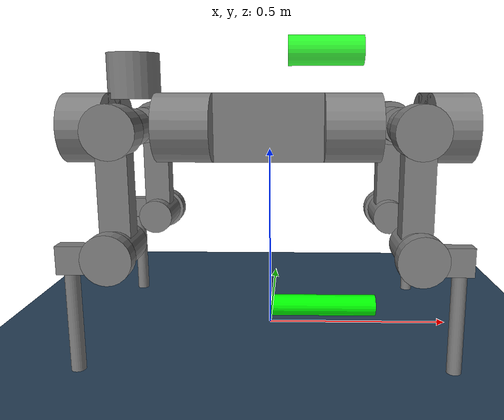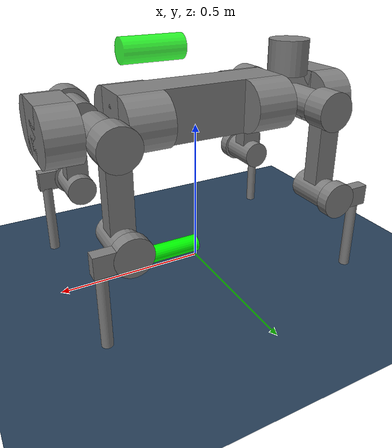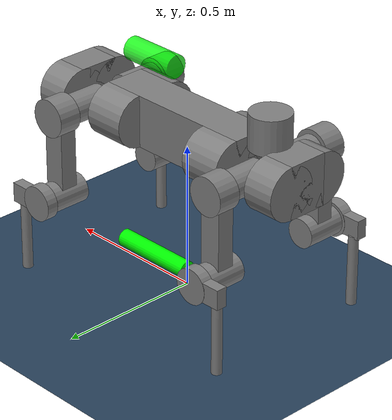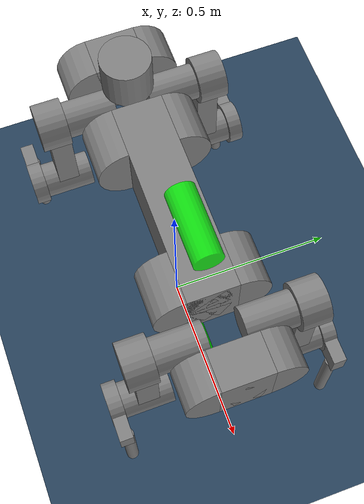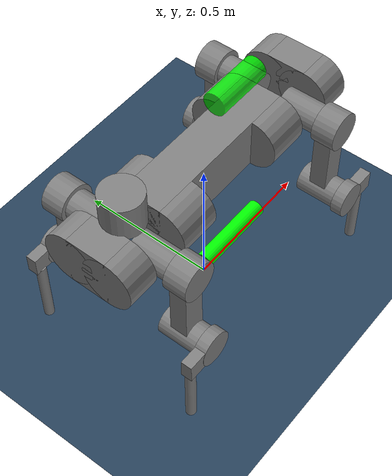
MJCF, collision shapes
<mujoco model="anymal_c scene">
  <include file="anymal_c.xml"/>

  <visual>
    <headlight diffuse="0.6 0.6 0.6" ambient="0.3 0.3 0.3" specular="0 0 0"/>
    <rgba haze="0.15 0.25 0.35 1"/>
    <global azimuth="120" elevation="-20"/>
  </visual>

  <statistic center="0 0 .3" extent="1.2"/>

  <asset>
    <texture type="skybox" builtin="gradient" rgb1="0.3 0.5 0.7" rgb2="0 0 0" width="512" height="3072"/>
    <texture type="2d" name="groundplane" builtin="checker" mark="edge" rgb1="0.2 0.3 0.4" rgb2="0.1 0.2 0.3"
      markrgb="0.8 0.8 0.8" width="300" height="300"/>
    <material name="groundplane" texture="groundplane" texuniform="true" texrepeat="5 5" reflectance="0.2"/>
  </asset>

  <worldbody>
    <light pos="0 0 1.5" dir="0 0 -1" directional="true"/>
    <geom name="ground" size="0 0 0.05" type="plane" material="groundplane"/>
  </worldbody>
</mujoco>

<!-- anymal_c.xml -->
<mujoco model="anymal_c">
  <compiler angle="radian" meshdir="assets" texturedir="assets" autolimits="true"/>

  <option cone="elliptic" impratio="100"/>

  <default>
    <material specular="0" shininess="0.25"/>
    <default class="anymal_c">
      <joint damping="1" frictionloss="0.1"/>

      <default class="visual">
        <geom type="mesh" contype="0" conaffinity="0" group="2"/>
        <default class="visual_zflip">
          <geom quat="0 0 0 1"/>
        </default>
      </default>
      <default class="collision">
        <geom group="3" type="cylinder"/>
        <default class="foot">
          <geom type="sphere" size="0.03" pos="0 0 0.02325" priority="1" solimp="0.015 1 0.03" condim="6"
            friction="0.8 0.02 0.01"/>
        </default>
      </default>

      <default class="affine">
        <position kp="200" kv="1" ctrlrange="-6.28 6.28" forcerange="-140 140"/>
      </default>
    </default>
  </default>

  <asset>
    <material name="black_plastic" rgba="0.007 0.007 0.007 1"/>
    <material name="green" rgba="0.052 0.178 0.033 1"/>
    <material name="red" rgba="0.178 0.006 0.005 1"/>
    <material name="yellow" rgba="0.178 0.119 0.006 1"/>
    <material name="lwl" rgba="0.8 0.8 0.8 1"/>
    <material name="base" texture="base"/>
    <material name="top_shell" texture="top_shell"/>
    <material name="bottom_shell" texture="bottom_shell"/>
    <material name="hip_l" texture="hip_l"/>
    <material name="thigh" texture="thigh"/>
    <material name="shank_l" texture="shank_l"/>
    <material name="foot" texture="foot"/>
    <material name="hip_r" texture="hip_r"/>
    <material name="shank" texture="shank_r"/>
    <material name="hatch" texture="hatch"/>
    <material name="remote" texture="remote"/>
    <material name="handle" texture="handle"/>
    <material name="face" texture="face"/>
    <material name="depth_camera" texture="depth_camera"/>
    <material name="wide_angle_camera" texture="wide_angle_camera"/>
    <material name="battery" texture="battery"/>
    <material name="lidar_cage" texture="lidar_cage"/>
    <material name="lidar" texture="lidar"/>
    <material name="drive" texture="drive"/>

    <texture type="2d" name="base" file="base.png"/>
    <texture type="2d" name="top_shell" file="top_shell.png"/>
    <texture type="2d" name="bottom_shell" file="bottom_shell.png"/>
    <texture type="2d" name="remote" file="remote.png"/>
    <texture type="2d" name="hatch" file="hatch.png"/>
    <texture type="2d" name="handle" file="handle.png"/>
    <texture type="2d" name="face" file="face.png"/>
    <texture type="2d" name="battery" file="battery.png"/>
    <texture type="2d" name="lidar_cage" file="lidar_cage.png"/>
    <texture type="2d" name="depth_camera" file="depth_camera.png"/>
    <texture type="2d" name="wide_angle_camera" file="wide_angle_camera.png"/>
    <texture type="2d" name="lidar" file="lidar.png"/>
    <texture type="2d" name="drive" file="drive.png"/>
    <texture type="2d" name="hip_l" file="hip_l.png"/>
    <texture type="2d" name="shank_l" file="shank_l.png"/>
    <texture type="2d" name="foot" file="foot.png"/>
    <texture type="2d" name="thigh" file="thigh.png"/>
    <texture type="2d" name="shank_r" file="shank_r.png"/>
    <texture type="2d" name="hip_r" file="hip_r.png"/>

    <mesh file="base_0.obj"/>
    <mesh file="base_1.obj"/>
    <mesh file="base_2.obj"/>
    <mesh file="base_3.obj"/>
    <mesh file="base_4.obj"/>
    <mesh file="base_5.obj"/>
    <mesh file="top_shell.obj"/>
    <mesh file="bottom_shell.obj"/>
    <mesh file="remote.obj"/>
    <mesh file="handle.obj"/>
    <mesh file="face.obj"/>
    <mesh file="wide_angle_camera.obj"/>
    <mesh file="depth_camera.obj"/>
    <mesh file="battery.obj"/>
    <mesh file="lidar_cage.obj"/>
    <mesh file="lidar.obj"/>
    <mesh file="drive.obj"/>
    <mesh file="hip_l.obj"/>
    <mesh file="thigh.obj"/>
    <mesh file="shank_l.obj"/>
    <mesh file="foot.obj"/>
    <mesh file="hip_r.obj"/>
    <mesh file="hatch.obj"/>
    <mesh file="shank_r.obj"/>

    <!-- 目标箭头mesh -->
    <mesh name="arrow_cone" file="cone.stl" scale="0.003 0.003 0.003"/>

    <!-- 目标箭头材质 -->
    <material name="target_green" rgba="0 1 0 0.9"/>
  </asset>

  <worldbody>
    <light name="spotlight" mode="targetbodycom" target="base" pos="0 -1 2" cutoff="30"/>

    <!-- 目标位置标记：三维箭头 (圆柱+圆锥) -->
    <body name="target_marker" pos="0 0 0.05">
      <joint name="target_x" type="slide" axis="1 0 0" limited="false"/>
      <joint name="target_y" type="slide" axis="0 1 0" limited="false"/>
      <joint name="target_yaw" type="hinge" axis="0 0 1" limited="false"/>

      <!-- 箭头杆：圆柱体，长度0.3m，半径0.03m -->
      <geom name="arrow_shaft" type="cylinder" size="0.03 0.15"
            pos="0.15 0 0" quat="0.707107 0 0.707107 0"
            material="target_green" contype="0" conaffinity="0"/>

      <!-- 箭头头：圆锥，底部贴合圆柱末端圆面，尖端向前 -->
      <!-- 圆柱末端在 x=0.3，圆锥底部也在 x=0.3 附近 -->
      <!-- 圆锥原始朝向：尖端向+Z，需要绕Y轴旋转-90°让尖端指向+X -->
      <geom name="arrow_head" type="mesh" mesh="arrow_cone"
            pos="0.28 -0.3 0.09" quat="0.707107 0 0.707107 0"
            material="target_green" contype="0" conaffinity="0"/>
    </body>
    <body name="base" pos="0 0 0.56" quat="1 0 0 0" childclass="anymal_c">
      <freejoint/>
      <inertial mass="19.2035" pos="0.0025 0 0.0502071" quat="0.5 0.5 0.5 0.5" diaginertia="0.639559 0.624031 0.217374"/>

      <!-- IMU传感器位置 -->
      <site name="imu_site" pos="0 0 0" size="0.01"/>

      <geom mesh="base_0" material="green" class="visual"/>
      <geom mesh="base_1" material="yellow" class="visual"/>
      <geom mesh="base_2" material="red" class="visual"/>
      <geom mesh="base_3" material="black_plastic" class="visual"/>
      <geom mesh="base_4" material="lwl" class="visual"/>
      <geom mesh="base_5" material="base" class="visual"/>
      <geom name="base" class="collision" size="0.29 0.07 0.09" type="box"/>
      <geom class="collision" size="0.09 0.0725" pos="0.2175 0.07 0" quat="1 0 1 0"/>
      <geom class="collision" size="0.09 0.0725" pos="-0.2175 0.07 0" quat="1 0 1 0"/>
      <geom class="collision" size="0.09 0.0725" pos="0.2175 -0.07 0" quat="1 0 1 0"/>
      <geom class="collision" size="0.09 0.0725" pos="-0.2175 -0.07 0" quat="1 0 1 0"/>
      <geom material="top_shell" mesh="top_shell" class="visual"/>
      <geom material="bottom_shell" mesh="bottom_shell" class="visual"/>
      <geom material="remote" mesh="remote" class="visual"/>
      <geom material="handle" mesh="handle" class="visual"/>
      <geom pos="0.4145 0 0" material="face" mesh="face" class="visual"/>
      <geom class="collision" size="0.055 0.07 0.09" pos="0.4695 0 0" type="box"/>
      <geom class="collision" size="0.09 0.055" pos="0.4695 0.07 0" quat="1 0 1 0"/>
      <geom class="collision" size="0.09 0.055" pos="0.4695 -0.07 0" quat="1 0 1 0"/>
      <geom pos="0.46165 0 -0.0292" quat="0.965926 0 0.258819 0" material="depth_camera" mesh="depth_camera"
        class="visual"/>
      <geom pos="0.513 0 0.01497" material="wide_angle_camera" mesh="wide_angle_camera" class="visual"/>
      <geom pos="-0.4145 0 0" material="face" mesh="face" class="visual_zflip"/>
      <geom class="collision" size="0.055 0.07 0.09" pos="-0.4695 0 0" quat="0 0 0 1" type="box"/>
      <geom class="collision" size="0.09 0.055" pos="-0.4695 -0.07 0" quat="0 -1 0 1"/>
      <geom class="collision" size="0.09 0.055" pos="-0.4695 0.07 0" quat="0 -1 0 1"/>
      <geom pos="-0.46165 0 -0.0292" quat="0 -0.258819 0 0.965926" material="depth_camera" mesh="depth_camera"
        class="visual"/>
      <geom pos="-0.513 0 0.01497" material="wide_angle_camera" mesh="wide_angle_camera" class="visual_zflip"/>
      <geom material="battery" mesh="battery" class="visual"/>
      <geom pos="0 0.07646 0.02905" quat="0.683013 -0.183013 0.183013 0.683013" material="depth_camera"
        mesh="depth_camera" class="visual"/>
      <geom pos="0 -0.07646 0.02905" quat="0.683013 0.183013 0.183013 -0.683013" material="depth_camera"
        mesh="depth_camera" class="visual"/>
      <geom pos="-0.364 0 0.0735" material="lidar_cage" mesh="lidar_cage" class="visual"/>
      <geom class="collision" size="0.07 0.06" pos="-0.364 0 0.1335"/>
      <geom pos="-0.364 0 0.1422" quat="1 0 0 -1" material="lidar" mesh="lidar" class="visual"/>
      <geom pos="0.2999 0.104 0" quat="0.258819 0.965926 0 0" material="drive" mesh="drive" class="visual"/>
      <geom pos="0.2999 -0.104 0" quat="0.258819 -0.965926 0 0" material="drive" mesh="drive" class="visual"/>
      <geom pos="-0.2999 0.104 0" quat="0 0 0.965926 -0.258819" material="drive" mesh="drive" class="visual"/>
      <geom pos="-0.2999 -0.104 0" quat="0 0 -0.965926 -0.258819" material="drive" mesh="drive" class="visual"/>
      <geom pos="0.116 0 0.073" material="hatch" mesh="hatch" class="visual"/>
      <body name="LF_HIP" pos="0.2999 0.104 0" quat="0.258819 0.965926 0 0">
        <inertial mass="2.781" pos="0.0566606 -0.015294 -0.00829784" quat="-0.127978 0.709783 -0.135278 0.679359"
          diaginertia="0.00585729 0.00491868 0.00329081"/>
        <joint name="LF_HAA" axis="1 0 0" range="-0.72 0.49"/>
        <geom quat="0.258819 -0.965926 0 0" material="hip_l" mesh="hip_l" class="visual"/>
        <geom pos="0.0599 -0.0725816 -0.041905" quat="0.183013 -0.683013 0.683013 0.183013" material="drive"
          mesh="drive" class="visual"/>
        <geom class="collision" size="0.05 0.07" pos="0.0599 -0.0119598 -0.006905"
          quat="-0.353553 -0.612372 0.612372 -0.353553"/>
        <body name="LF_THIGH" pos="0.0599 -0.0725816 -0.041905" quat="0.183013 -0.683013 0.683013 0.183013">
          <inertial mass="3.071" pos="0.0308147 4.64995e-05 -0.245696" quat="0.993166 -0.00515309 -0.0806592 0.0841972"
            diaginertia="0.03025 0.0298943 0.00418465"/>
          <joint name="LF_HFE" axis="1 0 0" range="-9.42478 9.42478"/>
          <geom quat="1 0 0 -1" material="thigh" mesh="thigh" class="visual"/>
          <geom class="collision" size="0.065 0.04" pos="0.04 0 0" quat="0.5 0.5 -0.5 -0.5"/>
          <geom class="collision" size="0.0375 0.03 0.141314" pos="0.03 0 -0.141314" quat="1 0 0 -1" type="box"/>
          <geom pos="0.1003 0 -0.285" material="drive" mesh="drive" class="visual"/>
          <geom class="collision" size="0.05 0.07" pos="0.0303 0 -0.285" quat="1 0 1 0"/>
          <body name="LF_SHANK" pos="0.1003 0 -0.285">
            <inertial mass="0.58842" pos="0.005462 -0.0612528 -0.0806598"
              quat="0.992934 -0.115904 -0.00105487 -0.0254421" diaginertia="0.0101637 0.00923838 0.00111927"/>
            <joint name="LF_KFE" axis="1 0 0" range="-9.42478 9.42478"/>
            <geom quat="1 0 0 -1" material="shank_l" mesh="shank_l" class="visual"/>
            <geom class="collision" size="0.06 0.02" pos="0.02 0 0" quat="0.5 0.5 -0.5 -0.5"/>
            <geom class="collision" size="0.057499 0.03375 0.019" pos="0.02 -0.057499 0" quat="0.5 0.5 -0.5 -0.5"
              type="box"/>
            <geom pos="0.01305 -0.08795 -0.33797" quat="0.382683 0 0 -0.92388" material="foot" mesh="foot"
              class="visual"/>
            <geom class="collision" size="0.0175 0.141252" pos="0.01305 -0.08795 -0.168985" quat="1 0 0 -1"/>
            <geom name="LF_FOOT" class="foot" pos="0.01305 -0.08795 -0.31547" quat="1 0 0 -1"/>
          </body>
        </body>
      </body>
      <body name="RF_HIP" pos="0.2999 -0.104 0" quat="0.258819 -0.965926 0 0">
        <inertial mass="2.781" pos="0.0567633 0.015294 -0.00829784" quat="0.13524 0.679072 0.127985 0.710065"
          diaginertia="0.00585928 0.0049205 0.00329064"/>
        <joint name="RF_HAA" axis="1 0 0" range="-0.49 0.72"/>
        <geom quat="0.258819 0.965926 0 0" material="hip_r" mesh="hip_r" class="visual"/>
        <geom pos="0.0599 0.0725816 -0.041905" quat="0.183013 0.683013 0.683013 -0.183013" material="drive" mesh="drive"
          class="visual"/>
        <geom class="collision" size="0.05 0.07" pos="0.0599 0.0119598 -0.006905"
          quat="-0.353553 0.612372 0.612372 0.353553"/>
        <body name="RF_THIGH" pos="0.0599 0.0725816 -0.041905" quat="0.183013 0.683013 0.683013 -0.183013">
          <inertial mass="3.071" pos="0.0308147 4.64995e-05 -0.245696" quat="0.992775 -0.00512735 -0.0806685 0.0886811"
            diaginertia="0.0302511 0.0298933 0.0041845"/>
          <joint name="RF_HFE" axis="-1 0 0" range="-9.42478 9.42478"/>
          <geom quat="1 0 0 -1" material="thigh" mesh="thigh" class="visual"/>
          <geom class="collision" size="0.065 0.04" pos="0.04 0 0" quat="0.5 0.5 0.5 0.5"/>
          <geom class="collision" size="0.0375 0.03 0.141314" pos="0.03 0 -0.141314" quat="1 0 0 1" type="box"/>
          <geom pos="0.1003 0 -0.285" material="drive" mesh="drive" class="visual"/>
          <geom class="collision" size="0.05 0.07" pos="0.0303 0 -0.285" quat="1 0 1 0"/>
          <body name="RF_SHANK" pos="0.1003 0 -0.285">
            <inertial mass="0.58842" pos="0.005462 0.0612528 -0.0806598" quat="0.992934 0.115904 -0.00105487 0.0254421"
              diaginertia="0.0101637 0.00923838 0.00111927"/>
            <joint name="RF_KFE" axis="-1 0 0" range="-9.42478 9.42478"/>
            <geom quat="1 0 0 1" material="shank" mesh="shank_r" class="visual"/>
            <geom class="collision" size="0.06 0.02" pos="0.02 0 0" quat="0.5 0.5 0.5 0.5"/>
            <geom class="collision" size="0.057499 0.03375 0.019" pos="0.02 0.057499 0" quat="0.5 0.5 0.5 0.5"
              type="box"/>
            <geom pos="0.01305 0.08795 -0.33797" quat="0.382683 0 0 0.92388" material="foot" mesh="foot" class="visual"/>
            <geom class="collision" size="0.0175 0.141252" pos="0.01305 0.08795 -0.168985" quat="1 0 0 1"/>
            <geom name="RF_FOOT" class="foot" pos="0.01305 0.08795 -0.31547" quat="1 0 0 1"/>
          </body>
        </body>
      </body>
      <body name="LH_HIP" pos="-0.2999 0.104 0" quat="0 0 0.965926 -0.258819">
        <inertial mass="2.781" pos="0.0567633 0.015294 -0.00829784" quat="0.13524 0.679072 0.127985 0.710065"
          diaginertia="0.00585928 0.0049205 0.00329064"/>
        <joint name="LH_HAA" axis="-1 0 0" range="-0.72 0.49"/>
        <geom quat="-0.258819 -0.965926 0 0" material="hip_r" mesh="hip_r" class="visual"/>
        <geom pos="0.0599 0.0725816 -0.041905" quat="0.183013 0.683013 0.683013 -0.183013" material="drive" mesh="drive"
          class="visual"/>
        <geom class="collision" size="0.05 0.07" pos="0.0599 0.0119598 -0.006905"
          quat="-0.353553 0.612372 0.612372 0.353553"/>
        <body name="LH_THIGH" pos="0.0599 0.0725816 -0.041905" quat="0.183013 0.683013 0.683013 -0.183013">
          <inertial mass="3.071" pos="0.0308147 4.64995e-05 -0.245696" quat="0.992775 -0.00512735 -0.0806685 0.0886811"
            diaginertia="0.0302511 0.0298933 0.0041845"/>
          <joint name="LH_HFE" axis="1 0 0" range="-9.42478 9.42478"/>
          <geom quat="1 0 0 -1" material="thigh" mesh="thigh" class="visual"/>
          <geom class="collision" size="0.065 0.04" pos="0.04 0 0" quat="0.5 0.5 -0.5 -0.5"/>
          <geom class="collision" size="0.0375 0.03 0.141314" pos="0.03 0 -0.141314" quat="1 0 0 -1" type="box"/>
          <geom pos="0.1003 0 -0.285" material="drive" mesh="drive" class="visual"/>
          <geom class="collision" size="0.05 0.07" pos="0.0303 0 -0.285" quat="1 0 1 0"/>
          <body name="LH_SHANK" pos="0.1003 0 -0.285">
            <inertial mass="0.58842" pos="0.005462 0.0612528 -0.0806598" quat="0.992934 0.115904 -0.00105487 0.0254421"
              diaginertia="0.0101637 0.00923838 0.00111927"/>
            <joint name="LH_KFE" axis="1 0 0" range="-9.42478 9.42478"/>
            <geom quat="-1 0 0 -1" material="shank" mesh="shank_r" class="visual"/>
            <geom class="collision" size="0.06 0.02" pos="0.02 0 0" quat="0.5 0.5 -0.5 -0.5"/>
            <geom class="collision" size="0.057499 0.03375 0.019" pos="0.02 0.057499 0" quat="0.5 0.5 -0.5 -0.5"
              type="box"/>
            <geom pos="0.01305 0.08795 -0.33797" quat="-0.382683 0 0 -0.92388" material="foot" mesh="foot"
              class="visual"/>
            <geom class="collision" size="0.0175 0.141252" pos="0.01305 0.08795 -0.168985" quat="1 0 0 -1"/>
            <geom name="LH_FOOT" class="foot" pos="0.01305 0.08795 -0.31547" quat="1 0 0 -1"/>
          </body>
        </body>
      </body>
      <body name="RH_HIP" pos="-0.2999 -0.104 0" quat="0 0 -0.965926 -0.258819">
        <inertial mass="2.781" pos="0.0566606 -0.015294 -0.00829784" quat="-0.127978 0.709783 -0.135278 0.679359"
          diaginertia="0.00585729 0.00491868 0.00329081"/>
        <joint name="RH_HAA" axis="-1 0 0" range="-0.49 0.72"/>
        <geom quat="-0.258819 0.965926 0 0" material="hip_l" mesh="hip_l" class="visual"/>
        <geom pos="0.0599 -0.0725816 -0.041905" quat="-0.183013 0.683013 -0.683013 -0.183013" material="drive"
          mesh="drive" class="visual"/>
        <geom class="collision" size="0.05 0.07" pos="0.0599 -0.0119598 -0.006905"
          quat="0.353553 0.612372 -0.612372 0.353553"/>
        <body name="RH_THIGH" pos="0.0599 -0.0725816 -0.041905" quat="-0.183013 0.683013 -0.683013 -0.183013">
          <inertial mass="3.071" pos="0.0308147 4.64995e-05 -0.245696" quat="0.993166 -0.00515309 -0.0806592 0.0841972"
            diaginertia="0.03025 0.0298943 0.00418465"/>
          <joint name="RH_HFE" axis="-1 0 0" range="-9.42478 9.42478"/>
          <geom quat="1 0 0 -1" material="thigh" mesh="thigh" class="visual"/>
          <geom class="collision" size="0.065 0.04" pos="0.04 0 0" quat="0.5 0.5 0.5 0.5"/>
          <geom class="collision" size="0.0375 0.03 0.141314" pos="0.03 0 -0.141314" quat="1 0 0 1" type="box"/>
          <geom pos="0.1003 0 -0.285" material="drive" mesh="drive" class="visual"/>
          <geom class="collision" size="0.05 0.07" pos="0.0303 0 -0.285" quat="1 0 1 0"/>
          <body name="RH_SHANK" pos="0.1003 0 -0.285">
            <inertial mass="0.58842" pos="0.005462 -0.0612528 -0.0806598"
              quat="0.992934 -0.115904 -0.00105487 -0.0254421" diaginertia="0.0101637 0.00923838 0.00111927"/>
            <joint name="RH_KFE" axis="-1 0 0" range="-9.42478 9.42478"/>
            <geom quat="1 0 0 -1" material="shank_l" mesh="shank_l" class="visual"/>
            <geom class="collision" size="0.06 0.02" pos="0.02 0 0" quat="0.5 0.5 0.5 0.5"/>
            <geom class="collision" size="0.057499 0.03375 0.019" pos="0.02 -0.057499 0" quat="0.5 0.5 0.5 0.5"
              type="box"/>
            <geom pos="0.01305 -0.08795 -0.33797" quat="0.382683 0 0 -0.92388" material="foot" mesh="foot"
              class="visual"/>
            <geom class="collision" size="0.0175 0.141252" pos="0.01305 -0.08795 -0.168985" quat="1 0 0 1"/>
            <geom name="RH_FOOT" class="foot" pos="0.01305 -0.08795 -0.31547" quat="1 0 0 1"/>
          </body>
        </body>
      </body>
    </body>

    <!-- 当前朝向箭头（绿色）- 使用freejoint控制位置，不影响物理 -->
    <body name="robot_heading_arrow" pos="0 0 0.76">
      <freejoint/>
      <geom name="robot_arrow_shaft" type="cylinder" size="0.04 0.1"
            pos="0.15 0 0" quat="0.707107 0 0.707107 0"
            rgba="0 1 0 0.8" contype="0" conaffinity="0"/>
      <geom name="robot_arrow_head" type="mesh" mesh="arrow_cone"
            pos="0.23 -0.3 0.09" quat="0.707107 0 0.707107 0"
            rgba="0 1 0 0.8" contype="0" conaffinity="0"/>
    </body>

    <!-- 期望朝向箭头（蓝色）- 使用freejoint控制位置，不影响物理 -->
    <body name="desired_heading_arrow" pos="0 0 0.76">
      <freejoint/>
      <geom name="desired_arrow_shaft" type="cylinder" size="0.04 0.1"
            pos="0.15 0 0" quat="0.707107 0 0.707107 0"
            rgba="0 0 1 0.8" contype="0" conaffinity="0"/>
      <geom name="desired_arrow_head" type="mesh" mesh="arrow_cone"
            pos="0.23 -0.3 0.09" quat="0.707107 0 0.707107 0"
            rgba="0 0 1 0.8" contype="0" conaffinity="0"/>
    </body>
  </worldbody>

  <contact>
    <exclude body1="base" body2="LF_THIGH"/>
    <exclude body1="base" body2="RF_THIGH"/>
    <exclude body1="base" body2="LH_THIGH"/>
    <exclude body1="base" body2="RH_THIGH"/>
  </contact>

  <sensor>
    <framelinvel name="base_linvel" objtype="body" objname="base"/>
    <gyro name="base_gyro" site="imu_site"/>
  </sensor>

  <actuator>
    <position class="affine" joint="LF_HAA" name="LF_HAA"/>
    <position class="affine" joint="LF_HFE" name="LF_HFE"/>
    <position class="affine" joint="LF_KFE" name="LF_KFE"/>
    <position class="affine" joint="RF_HAA" name="RF_HAA"/>
    <position class="affine" joint="RF_HFE" name="RF_HFE"/>
    <position class="affine" joint="RF_KFE" name="RF_KFE"/>
    <position class="affine" joint="LH_HAA" name="LH_HAA"/>
    <position class="affine" joint="LH_HFE" name="LH_HFE"/>
    <position class="affine" joint="LH_KFE" name="LH_KFE"/>
    <position class="affine" joint="RH_HAA" name="RH_HAA"/>
    <position class="affine" joint="RH_HFE" name="RH_HFE"/>
    <position class="affine" joint="RH_KFE" name="RH_KFE"/>
  </actuator>
</mujoco>
